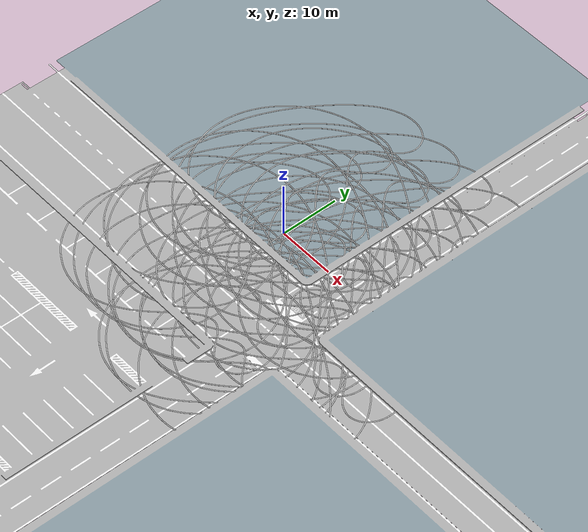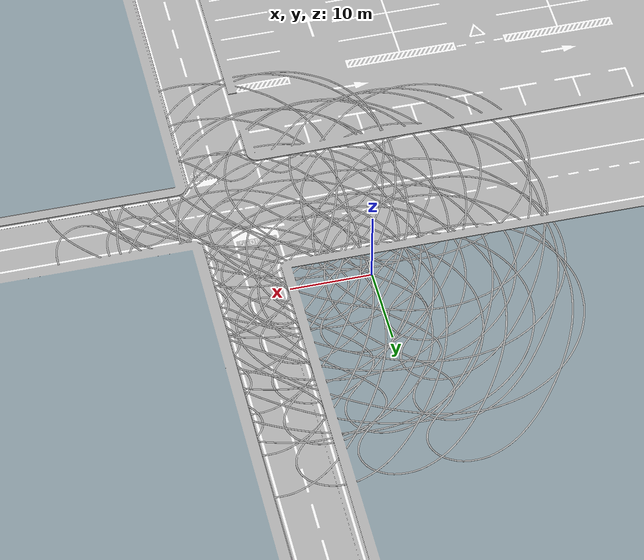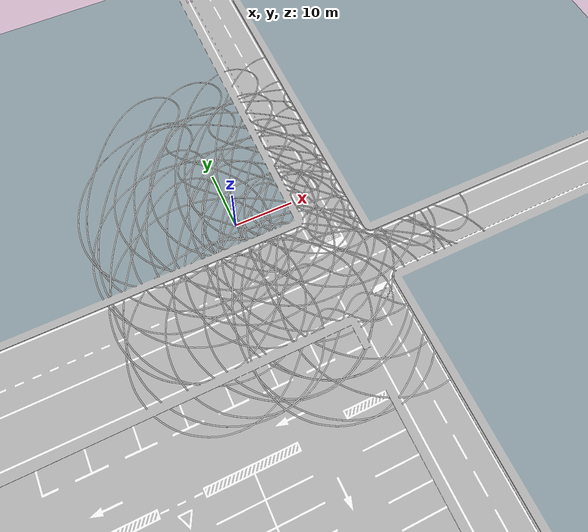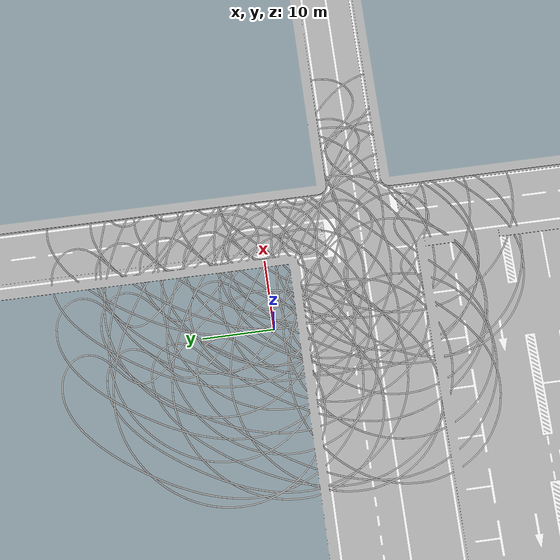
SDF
<sdf version="1.5">
 <world name="default">
  <include><name>sun1</name><uri>model://sun</uri></include>
  <include><uri>model://ground_plane</uri></include>
  <include><name>road_0</name><uri>model://road</uri><pose>-7 9 0 0 0 0</pose></include>
  <include><name>road_1</name><uri>model://road</uri><pose>-0.8 9 0 0 0 0</pose></include>
  <include><name>road_2</name><uri>model://road</uri><pose>5.4 9 0 0 0 0</pose></include>
  <include><name>road_2_1</name><uri>model://road</uri><pose>11.6 9 0 0 0 0</pose></include>
  <include><name>road_3</name><uri>model://road</uri><pose>14.2 -7 0 0 0 1.5708</pose></include>
  <include><name>road_4</name><uri>model://road</uri><pose>14.2 -0.8 0 0 0 1.5708</pose></include>
  <include><name>road_5</name><uri>model://road</uri><pose>14.2 5.4 0 0 0 1.5708</pose></include>
  <include><name>road_6</name><uri>model://road</uri><pose>14.2 -13.2 0 0 0 1.5708</pose></include>
  <include><name>road_0_1</name><uri>model://road</uri><pose>-7 0.9 0 0 0 0</pose></include>
  <include><name>road_01</name><uri>model://road</uri><pose>-0.8 0.9 0 0 0 0</pose></include>
  <include><name>road_02</name><uri>model://road</uri><pose>5.4 0.9 0 0 0 0</pose></include>
  <include><name>road_02_1</name><uri>model://road</uri><pose>11.6 0.9 0 0 0 0</pose></include>
  <include><name>road_03</name><uri>model://road</uri><pose>6.8 -7 0 0 0 1.5708</pose></include>
  <include><name>road_04</name><uri>model://road</uri><pose>6.8 -0.8 0 0 0 1.5708</pose></include>
  <include><name>road_05</name><uri>model://road</uri><pose>6.8 5.4 0 0 0 1.5708</pose></include>
  <include><name>road_06</name><uri>model://road</uri><pose>6.8 -13.2 0 0 0 1.5708</pose></include>
  <include><name>road_00</name><uri>model://road</uri><pose>-7 -7.2 0 0 0 0</pose></include>
  <include><name>road_002</name><uri>model://road</uri><pose>5.4 -7.2 0 0 0 0</pose></include>
  <include><name>road_002_1</name><uri>model://road</uri><pose>11.6 -7.2 0 0 0 0</pose></include>
  <include><name>road_004</name><uri>model://road</uri><pose>-0.5 -0.8 0 0 0 1.5708</pose></include>
  <include><name>road_005</name><uri>model://road</uri><pose>-0.5 5.4 0 0 0 1.5708</pose></include>
  <include><name>road_006</name><uri>model://road</uri><pose>-0.5 -13.2 0 0 0 1.5708</pose></include>
  <include><name>road_000</name><uri>model://road</uri><pose>-7 -15.3 0 0 0 0</pose></include>
  <include><name>road_0001</name><uri>model://road</uri><pose>-0.8 -15.3 0 0 0 0</pose></include>
  <include><name>road_0002</name><uri>model://road</uri><pose>5.4 -15.3 0 0 0 0</pose></include>
  <include><name>road_0002_1</name><uri>model://road</uri><pose>11.6 -15.3 0 0 0 0</pose></include>
  <include><name>road_0003</name><uri>model://road</uri><pose>-8.65 -7 0 0 0 1.5708</pose></include>
  <include><name>road_0004</name><uri>model://road</uri><pose>-8.65 -0.8 0 0 0 1.5708</pose></include>
  <include><name>road_0005</name><uri>model://road</uri><pose>-8.65 5.4 0 0 0 1.5708</pose></include>
  <include><name>road_0006</name><uri>model://road</uri><pose>-8.65 -13.2 0 0 0 1.5708</pose></include>
  <include><name>road_park_1</name><uri>model://road</uri><pose>14.2 -19.4 0 0 0 1.5708</pose></include>
  <include><name>road_park_2</name><uri>model://road</uri><pose>6.8 -19.4 0 0 0 1.5708</pose></include>
  <include><name>road_park_3</name><uri>model://road</uri><pose>9.9 -21.5 0 0 0 0</pose></include>
  <include><name>parking_2</name><uri>model://parking</uri><pose>14.8 -14 0 0 0 3.14</pose></include>
 </world>
</sdf>

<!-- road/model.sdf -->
<sdf version="1.5">
    <model name="road">
        <static>true</static>
        <link name="link">
            <collision name="collision">
                <pose>0 0 0 0 0 0</pose>
                <geometry>
                    <mesh>
                        <uri>model://road/meshes/road.stl</uri>
                    </mesh>
                </geometry>
            </collision>
            <visual name="visual">

              <pose>0 0 0 0 0 0</pose>
              <geometry>
              <mesh>
                 <uri>model://road/meshes/road.dae</uri>
              </mesh>
              </geometry>

              <material>
                  <script>
                      <uri>model://road/materials/scripts</uri>
                      <uri>model://road/materials/textures</uri>
                      <name>roadMat/Diffuse</name>
                  </script>
              </material>
             </visual>

        </link>
    </model>
</sdf>

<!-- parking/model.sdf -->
<sdf version="1.5">
  <model name="stop">
    <static>true</static>
    <link name="link">
      <collision name="collision">
        <geometry>
          <plane>
            <normal>0 0 1</normal>
            <size>100 100</size>
          </plane>
        </geometry>
      </collision>
      <visual name="visual">
        <geometry>
          <mesh>
	          <uri>model://parking/meshes/parking.dae</uri>
            <scale>1.3 1.3 1.3</scale>
          </mesh>
        </geometry>
      </visual>
    </link>
  </model>
</sdf>
